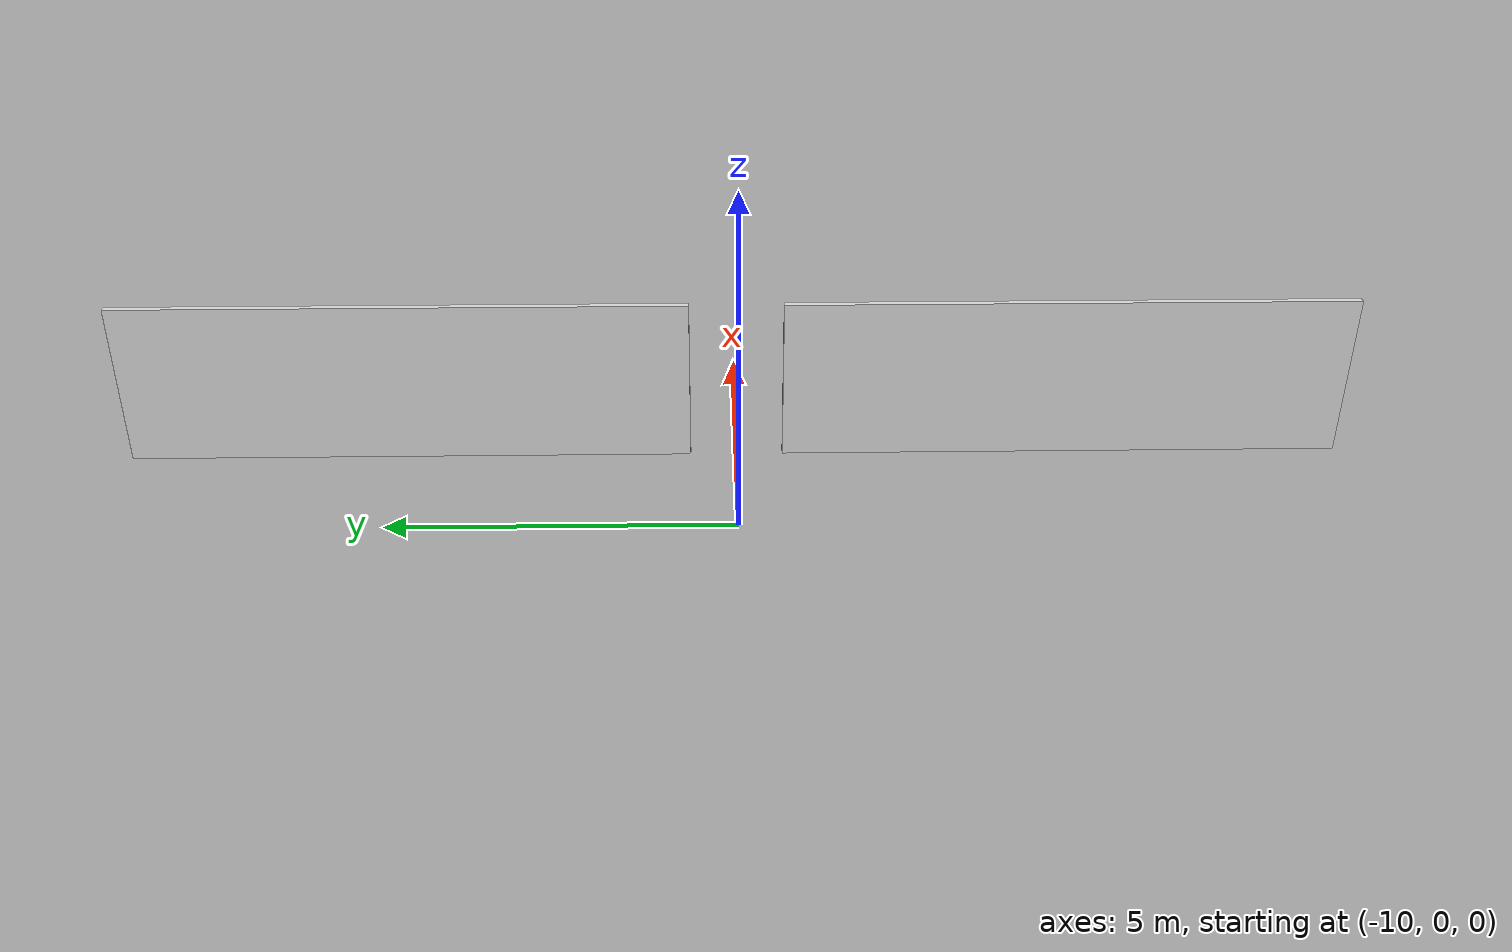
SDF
<?xml version="1.0" ?>
<sdf version="1.6">
  <model name="study_track_gate_m">
    <static>true</static>

    <link name='wall_l'>
      <pose>-8 -4.95 1.25 0 0 0</pose>
      <collision name='collision'>
        <geometry>
          <box>
            <size>0.1 8.5 2.5</size>
          </box>
        </geometry>
      </collision>
      <visual name='box_visual'>
        <geometry>
          <box>
            <size>0.1 8.5 2.5</size>
          </box>
        </geometry>
        <material>
          <ambient>0.85 0.85 0.85 1</ambient>
          <diffuse>0.85 0.85 0.85 1</diffuse>
          <specular>0.15 0.15 0.15 1</specular>
          <emissive>0 0 0 0</emissive>
        </material>
      </visual>
    </link>

    <link name='wall_r'>
      <pose>-8 4.95 1.25 0 0 0</pose>
      <collision name='collision'>
        <geometry>
          <box>
            <size>0.1 8.5 2.5</size>
          </box>
        </geometry>
      </collision>
      <visual name='box_visual'>
        <geometry>
          <box>
            <size>0.1 8.5 2.5</size>
          </box>
        </geometry>
        <material>
          <ambient>0.85 0.85 0.85 1</ambient>
          <diffuse>0.85 0.85 0.85 1</diffuse>
          <specular>0.15 0.15 0.15 1</specular>
          <emissive>0 0 0 0</emissive>
        </material>
      </visual>
    </link>

  </model>
</sdf>
